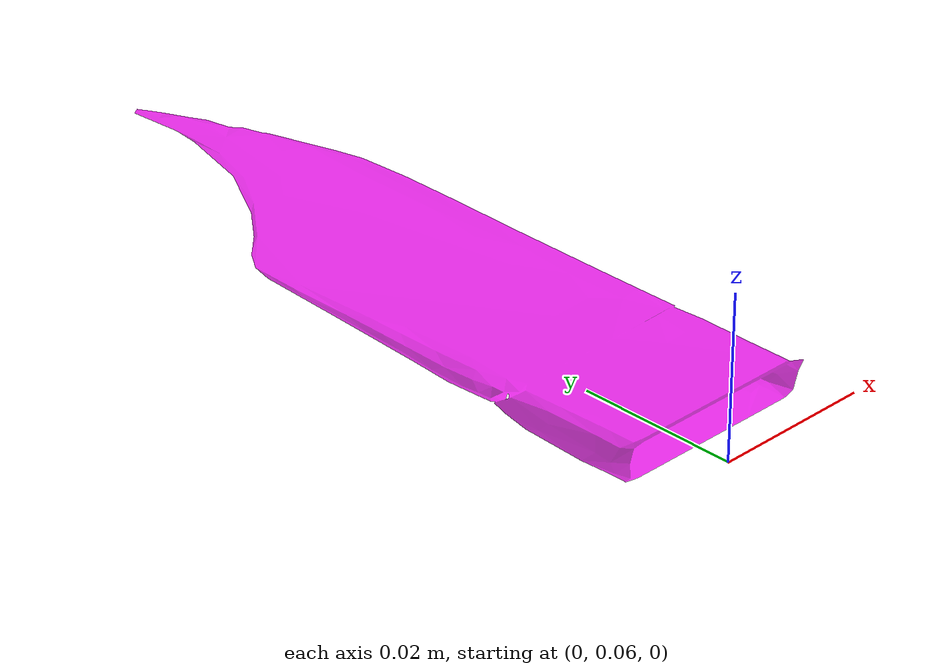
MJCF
<mujoco model="bottom_watertight_tiny">
  <default>
    <default group="2" type="mesh" contype="0" conaffinity="0">
      <geom group="2" type="mesh" contype="0" conaffinity="0"/>
    </default>
    <default group="3" type="mesh">
      <geom group="3" type="mesh"/>
    </default>
  </default>
  <asset>
    <mesh file="bottom_watertight_tiny.obj"/>
    <mesh file="bottom_watertight_tiny_collision_0.obj"/>
    <mesh file="bottom_watertight_tiny_collision_1.obj"/>
  </asset>
  <worldbody>
    <body name="bottom_watertight_tiny">
      <freejoint/>
      <geom mesh="bottom_watertight_tiny" group="2" type="mesh" rgba="1 0 1 0.8" contype="0" conaffinity="0"/>
      <geom mesh="bottom_watertight_tiny_collision_0" rgba="0.05714790637993239 0.04104642499794142 0.7704133386798093 1" group="3" type="mesh"/>
      <geom mesh="bottom_watertight_tiny_collision_1" rgba="0.35641175596807917 0.7225773080263868 0.8113147606842466 1" group="3" type="mesh"/>
    </body>
  </worldbody>
</mujoco>
